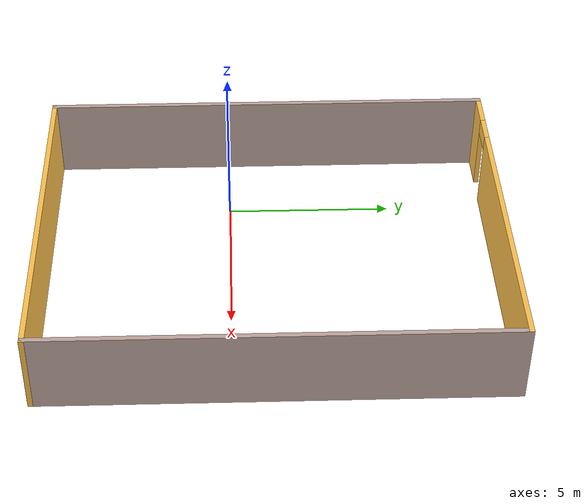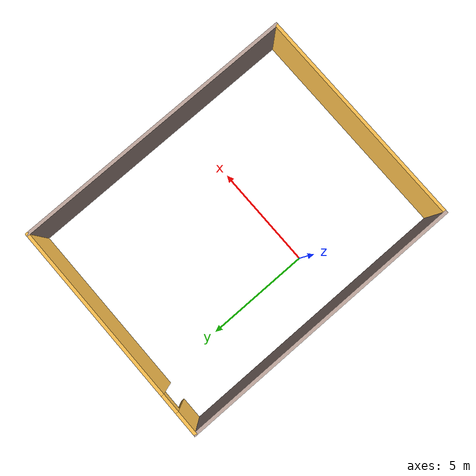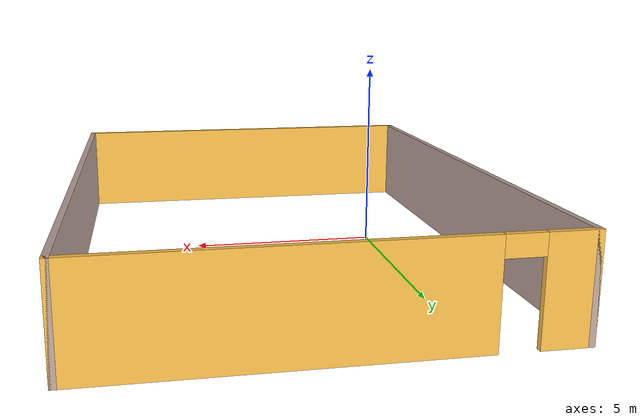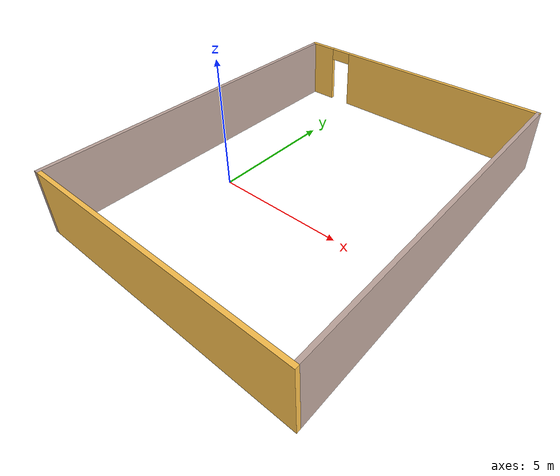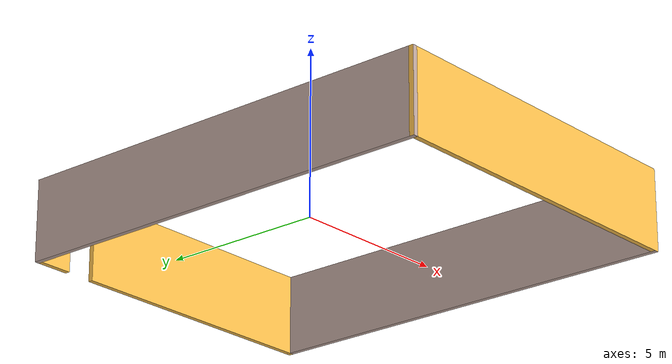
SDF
<?xml version='1.0'?>
<sdf version='1.6'>
  <model name='Home_Environment_Walls'>
    <pose frame=''>2.89 1.24 0 0 -0 0</pose>
    <link name='Wall_0'>
      <collision name='Wall_0_Collision'>
        <geometry>
          <box>
            <size>13.75 0.15 2.5</size>
          </box>
        </geometry>
        <pose frame=''>0 0 1.25 0 -0 0</pose>
      </collision>
      <visual name='Wall_0_Visual'>
        <pose frame=''>0 0 1.25 0 -0 0</pose>
        <geometry>
          <box>
            <size>13.75 0.15 2.5</size>
          </box>
        </geometry>
        <material>
          <script>
            <uri>file://media/materials/scripts/gazebo.material</uri>
            <name>Gazebo/Grey</name>
          </script>
          <ambient>0.760784 0.662745 0.627451 1</ambient>
        </material>
        <meta>
          <layer>0</layer>
        </meta>
      </visual>
      <pose frame=''>-5.3 0 0 0 -0 1.5708</pose>
    </link>
    <link name='Wall_3'>
      <pose frame=''>0 6.8 0 0 -0 0</pose>
      <visual name='Wall_3_Visual_0'>
        <pose frame=''>-4.7775 0 1.25 0 -0 0</pose>
        <geometry>
          <box>
            <size>1.195 0.15 2.5</size>
          </box>
        </geometry>
        <material>
          <script>
            <uri>file://media/materials/scripts/gazebo.material</uri>
            <name>Gazebo/Grey</name>
          </script>
          <ambient>1 0.764706 0.305882 1</ambient>
        </material>
        <meta>
          <layer>0</layer>
        </meta>
      </visual>
      <collision name='Wall_3_Collision_0'>
        <geometry>
          <box>
            <size>1.195 0.15 2.5</size>
          </box>
        </geometry>
        <pose frame=''>-4.7775 0 1.25 0 -0 0</pose>
      </collision>
      <visual name='Wall_3_Visual_1'>
        <pose frame=''>1.0475 0 1.25 0 -0 0</pose>
        <geometry>
          <box>
            <size>8.655 0.15 2.5</size>
          </box>
        </geometry>
        <material>
          <script>
            <uri>file://media/materials/scripts/gazebo.material</uri>
            <name>Gazebo/Grey</name>
          </script>
          <ambient>1 0.764706 0.305882 1</ambient>
        </material>
        <meta>
          <layer>0</layer>
        </meta>
      </visual>
      <collision name='Wall_3_Collision_1'>
        <geometry>
          <box>
            <size>8.655 0.15 2.5</size>
          </box>
        </geometry>
        <pose frame=''>1.0475 0 1.25 0 -0 0</pose>
      </collision>
      <visual name='Wall_3_Visual_2'>
        <pose frame=''>-3.73 0 2.25 0 -0 0</pose>
        <geometry>
          <box>
            <size>0.9 0.15 0.5</size>
          </box>
        </geometry>
        <material>
          <script>
            <uri>file://media/materials/scripts/gazebo.material</uri>
            <name>Gazebo/Grey</name>
          </script>
          <ambient>1 0.764706 0.305882 1</ambient>
        </material>
        <meta>
          <layer>0</layer>
        </meta>
      </visual>
      <collision name='Wall_3_Collision_2'>
        <geometry>
          <box>
            <size>0.9 0.15 0.5</size>
          </box>
        </geometry>
        <pose frame=''>-3.73 0 2.25 0 -0 0</pose>
      </collision>
    </link>
    <link name='Wall_4'>
      <collision name='Wall_4_Collision'>
        <geometry>
          <box>
            <size>13.75 0.15 2.5</size>
          </box>
        </geometry>
        <pose frame=''>0 0 1.25 0 -0 0</pose>
      </collision>
      <visual name='Wall_4_Visual'>
        <pose frame=''>0 0 1.25 0 -0 0</pose>
        <geometry>
          <box>
            <size>13.75 0.15 2.5</size>
          </box>
        </geometry>
        <material>
          <script>
            <uri>file://media/materials/scripts/gazebo.material</uri>
            <name>Gazebo/Grey</name>
          </script>
          <ambient>0.760784 0.662745 0.627451 1</ambient>
        </material>
        <meta>
          <layer>0</layer>
        </meta>
      </visual>
      <pose frame=''>5.3 0 0 0 -0 -1.5708</pose>
    </link>
    <link name='Wall_7'>
      <collision name='Wall_7_Collision'>
        <geometry>
          <box>
            <size>10.75 0.15 2.5</size>
          </box>
        </geometry>
        <pose frame=''>0 0 1.25 0 -0 0</pose>
      </collision>
      <visual name='Wall_7_Visual'>
        <pose frame=''>0 0 1.25 0 -0 0</pose>
        <geometry>
          <box>
            <size>10.75 0.15 2.5</size>
          </box>
        </geometry>
        <material>
          <script>
            <uri>file://media/materials/scripts/gazebo.material</uri>
            <name>Gazebo/Grey</name>
          </script>
          <ambient>1 0.764706 0.305882 1</ambient>
        </material>
        <meta>
          <layer>0</layer>
        </meta>
      </visual>
      <pose frame=''>0 -6.8 0 0 -0 3.14159</pose>
    </link>
    <static>1</static>
  </model>
</sdf>
